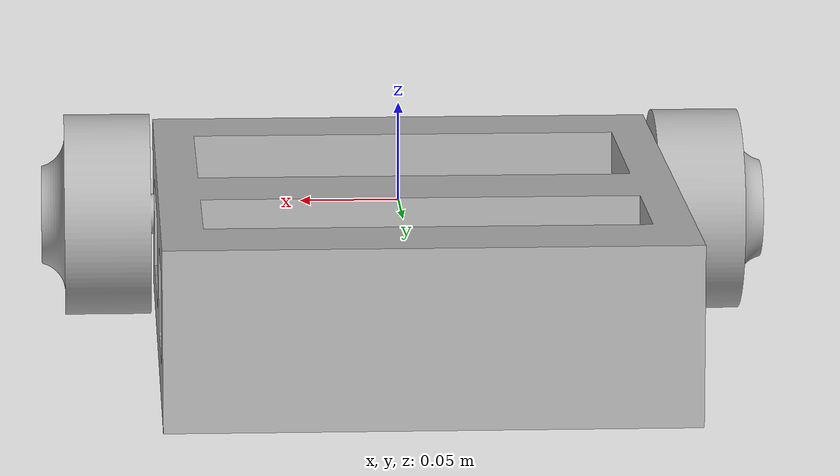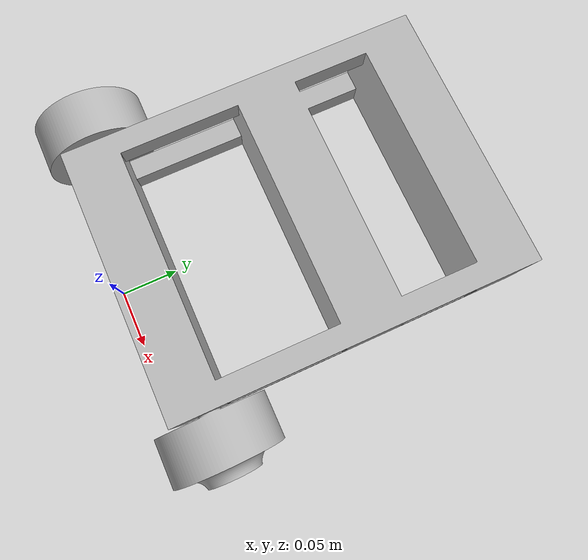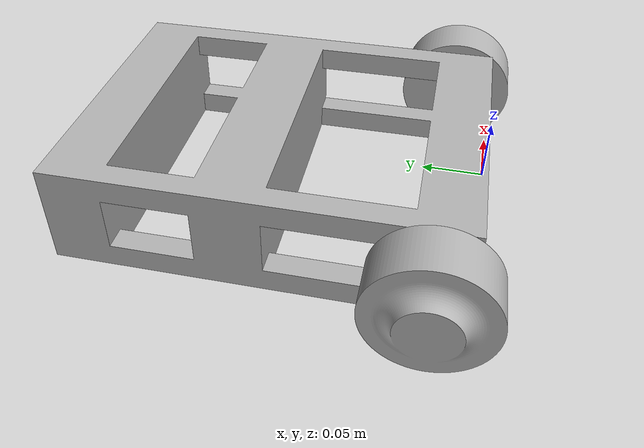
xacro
<?xml version="1.0" ?>
<robot name="TWSBR_URDF" xmlns:xacro="http://www.ros.org/wiki/xacro">

<xacro:include filename="$(find TWSBR_URDF_description)/urdf/materials.xacro" />
<xacro:include filename="$(find TWSBR_URDF_description)/urdf/TWSBR_URDF.trans" />
<xacro:include filename="$(find TWSBR_URDF_description)/urdf/TWSBR_URDF.gazebo" />
<link name="base_link">
  <inertial>
    <origin xyz="4.076852299762098e-17 0.17403727808522892 4.132000390427517e-11" rpy="0 0 0"/>
    <mass value="28.01978736128011"/>
    <inertia ixx="0.371608" iyy="0.182032" izz="0.516734" ixy="-0.0" iyz="-0.0" ixz="-0.0"/>
  </inertial>
  <visual>
    <origin xyz="0 0 0" rpy="0 0 0"/>
    <geometry>
      <mesh filename="package://TWSBR_URDF_description/meshes/base_link.stl" scale="0.001 0.001 0.001"/>
    </geometry>
    <material name="silver"/>
  </visual>
  <collision>
    <origin xyz="0 0 0" rpy="0 0 0"/>
    <geometry>
      <mesh filename="package://TWSBR_URDF_description/meshes/base_link.stl" scale="0.001 0.001 0.001"/>
    </geometry>
  </collision>
</link>

<link name="wheelL_link_1">
  <inertial>
    <origin xyz="0.038200681271520986 -1.3711254354120683e-14 1.7894748445548314e-15" rpy="0 0 0"/>
    <mass value="2.9583477547255947"/>
    <inertia ixx="0.003509" iyy="0.002359" izz="0.002359" ixy="-0.0" iyz="0.0" ixz="0.0"/>
  </inertial>
  <visual>
    <origin xyz="-0.112008 -0.03 -0.0" rpy="0 0 0"/>
    <geometry>
      <mesh filename="package://TWSBR_URDF_description/meshes/wheelL_link_1.stl" scale="0.001 0.001 0.001"/>
    </geometry>
    <material name="silver"/>
  </visual>
  <collision>
    <origin xyz="-0.112008 -0.03 -0.0" rpy="0 0 0"/>
    <geometry>
      <mesh filename="package://TWSBR_URDF_description/meshes/wheelL_link_1.stl" scale="0.001 0.001 0.001"/>
    </geometry>
  </collision>
</link>

<link name="wheelR_link_1">
  <inertial>
    <origin xyz="-0.0382006812715209 3.122502256758253e-17 1.3852638420119615e-14" rpy="0 0 0"/>
    <mass value="2.9583477547255947"/>
    <inertia ixx="0.003509" iyy="0.002359" izz="0.002359" ixy="-0.0" iyz="-0.0" ixz="-0.0"/>
  </inertial>
  <visual>
    <origin xyz="0.112008 -0.03 -0.0" rpy="0 0 0"/>
    <geometry>
      <mesh filename="package://TWSBR_URDF_description/meshes/wheelR_link_1.stl" scale="0.001 0.001 0.001"/>
    </geometry>
    <material name="silver"/>
  </visual>
  <collision>
    <origin xyz="0.112008 -0.03 -0.0" rpy="0 0 0"/>
    <geometry>
      <mesh filename="package://TWSBR_URDF_description/meshes/wheelR_link_1.stl" scale="0.001 0.001 0.001"/>
    </geometry>
  </collision>
</link>

<joint name="Revolute 1" type="continuous">
  <origin xyz="0.112008 0.03 0.0" rpy="0 0 0"/>
  <parent link="base_link"/>
  <child link="wheelL_link_1"/>
  <axis xyz="-1.0 0.0 0.0"/>
</joint>

<joint name="Revolute 2" type="continuous">
  <origin xyz="-0.112008 0.03 0.0" rpy="0 0 0"/>
  <parent link="base_link"/>
  <child link="wheelR_link_1"/>
  <axis xyz="-1.0 0.0 0.0"/>
</joint>

</robot>

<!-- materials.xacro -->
<robot name="TWSBR_URDF" xmlns:xacro="http://www.ros.org/wiki/xacro" >

<material name="silver">
  <color rgba="0.700 0.700 0.700 1.000"/>
</material>

</robot>

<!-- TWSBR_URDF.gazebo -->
<robot name="TWSBR_URDF" xmlns:xacro="http://www.ros.org/wiki/xacro" >

<xacro:property name="body_color" value="Gazebo/Silver" />

<gazebo>
  <plugin name="control" filename="libgazebo_ros_control.so"/>
</gazebo>
<gazebo reference="base_link">
  <material>${body_color}</material>
  <mu1>0.2</mu1>
  <mu2>0.2</mu2>
  <selfCollide>true</selfCollide>
  <gravity>true</gravity>
</gazebo>

<gazebo reference="wheelL_link_1">
  <material>${body_color}</material>
  <mu1>0.2</mu1>
  <mu2>0.2</mu2>
  <selfCollide>true</selfCollide>
</gazebo>

<gazebo reference="wheelR_link_1">
  <material>${body_color}</material>
  <mu1>0.2</mu1>
  <mu2>0.2</mu2>
  <selfCollide>true</selfCollide>
</gazebo>

</robot>
